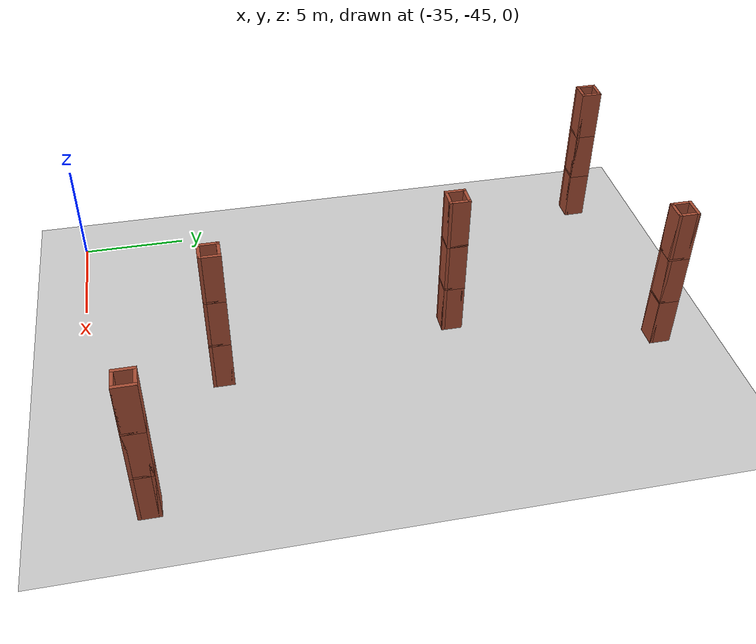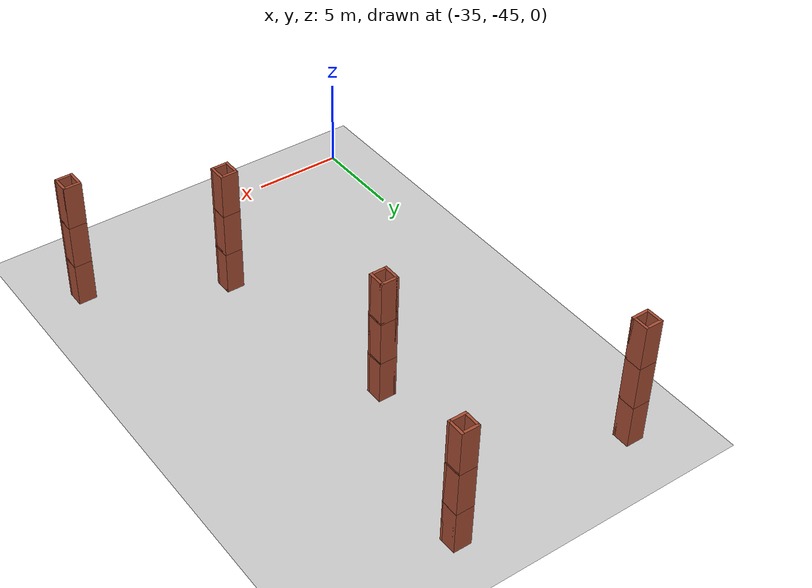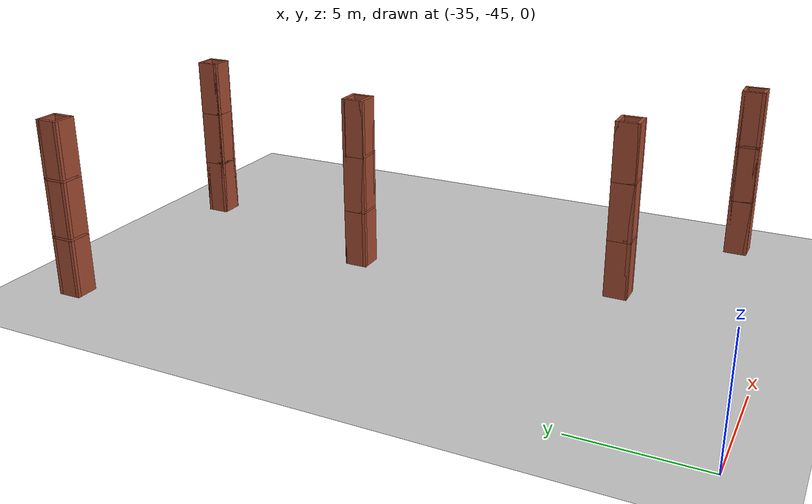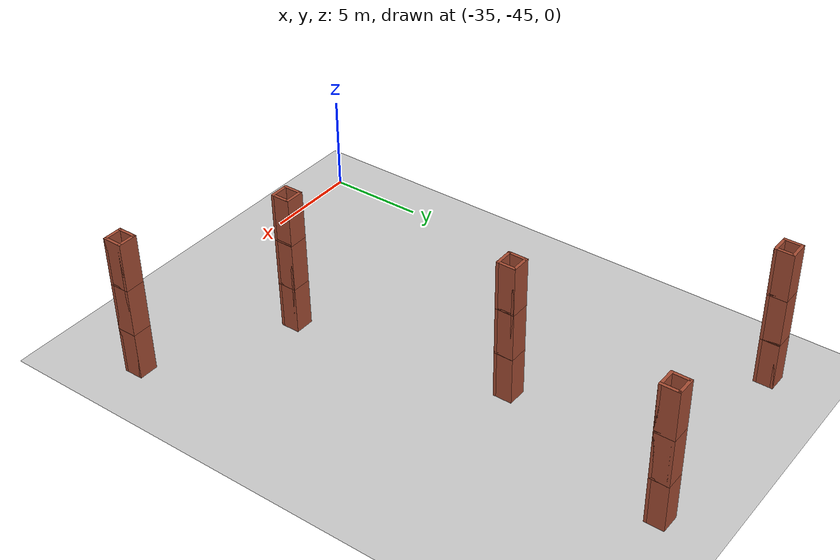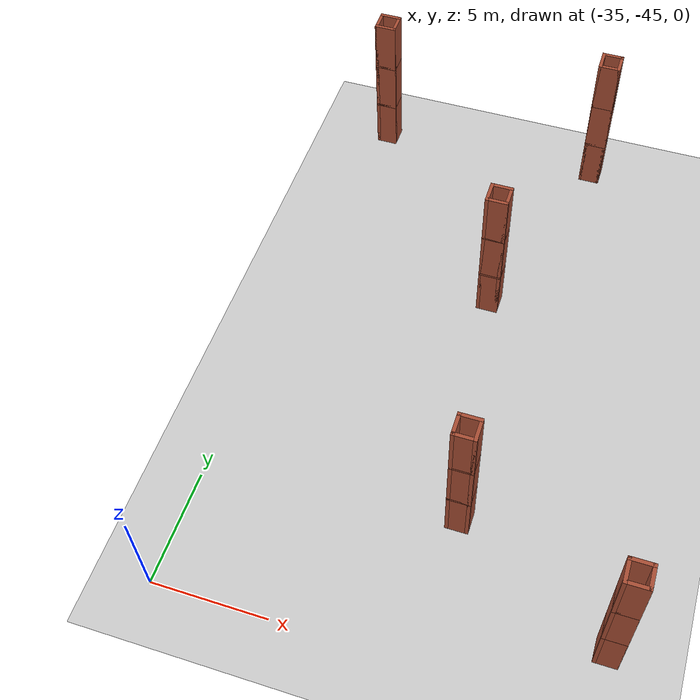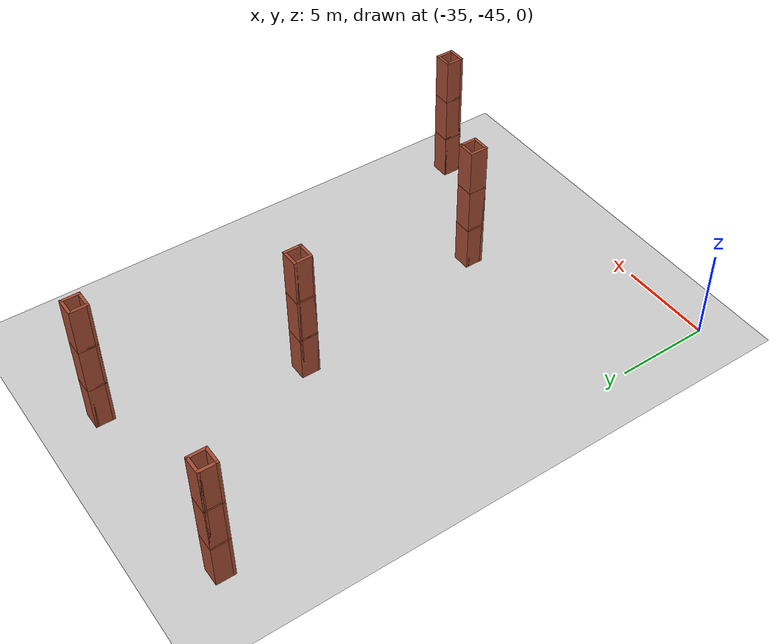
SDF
<sdf version="1.7">
 <world name="default">
  <model name="ground_plane">
   <static>1</static>
   <link name="link">
    <collision name="collision">
     <geometry><plane><normal>0 0 1</normal><size>100 100</size></plane></geometry>
     <surface>
      <contact><collide_bitmask>65535</collide_bitmask></contact>
      <friction><ode><mu>100</mu><mu2>50</mu2></ode></friction>
     </surface>
    </collision>
    <visual name="visual">
     <cast_shadows>0</cast_shadows>
     <geometry><plane><normal>0 0 1</normal><size>100 100</size></plane></geometry>
     <material>
      <script><uri>file://media/materials/scripts/gazebo.material</uri><name>Gazebo/Grey</name></script>
     </material>
    </visual>
   </link>
  </model>
  <model name="wall_model_clone_21">
   <pose>-20.8663 -39.3761 0 0 -0 0</pose>
   <link name="Floor_3">
    <collision name="Floor_3_Collision">
     <geometry><box><size>1 1 0.1</size></box></geometry>
     <pose>0 0 0.05 0 -0 0</pose>
    </collision>
    <visual name="Floor_3_Visual">
     <pose>0 0 0.05 0 -0 0</pose>
     <geometry><box><size>1 1 0.1</size></box></geometry>
     <material>
      <script><uri>file://media/materials/scripts/gazebo.material</uri><name>Gazebo/Bricks</name></script>
      <ambient>1 1 1 1</ambient>
     </material>
     <meta><layer>1</layer></meta>
    </visual>
    <pose>-3.21504 0.623396 2.5 0 -0 0</pose>
   </link>
   <link name="Floor_4">
    <collision name="Floor_4_Collision">
     <geometry><box><size>1 1 0.1</size></box></geometry>
     <pose>0 0 0.05 0 -0 0</pose>
    </collision>
    <visual name="Floor_4_Visual">
     <pose>0 0 0.05 0 -0 0</pose>
     <geometry><box><size>1 1 0.1</size></box></geometry>
     <material>
      <script><uri>file://media/materials/scripts/gazebo.material</uri><name>Gazebo/Bricks</name></script>
      <ambient>1 1 1 1</ambient>
     </material>
     <meta><layer>2</layer></meta>
    </visual>
    <pose>-3.21504 0.623396 5 0 -0 0</pose>
   </link>
   <link name="Wall_19">
    <collision name="Wall_19_Collision">
     <geometry><box><size>1 0.15 2.5</size></box></geometry>
     <pose>0 0 1.25 0 -0 0</pose>
    </collision>
    <visual name="Wall_19_Visual">
     <pose>0 0 1.25 0 -0 0</pose>
     <geometry><box><size>1 0.15 2.5</size></box></geometry>
     <material>
      <script><uri>file://media/materials/scripts/gazebo.material</uri><name>Gazebo/Bricks</name></script>
      <ambient>1 1 1 1</ambient>
     </material>
     <meta><layer>0</layer></meta>
    </visual>
    <pose>-3.64004 0.623396 0 0 -0 1.5708</pose>
   </link>
   <link name="Wall_21">
    <collision name="Wall_21_Collision">
     <geometry><box><size>1 0.15 2.5</size></box></geometry>
     <pose>0 0 1.25 0 -0 0</pose>
    </collision>
    <visual name="Wall_21_Visual">
     <pose>0 0 1.25 0 -0 0</pose>
     <geometry><box><size>1 0.15 2.5</size></box></geometry>
     <material>
      <script><uri>file://media/materials/scripts/gazebo.material</uri><name>Gazebo/Bricks</name></script>
      <ambient>1 1 1 1</ambient>
     </material>
     <meta><layer>0</layer></meta>
    </visual>
    <pose>-3.21504 1.0484 0 0 -0 0</pose>
   </link>
   <link name="Wall_22">
    <collision name="Wall_22_Collision">
     <geometry><box><size>1 0.15 2.5</size></box></geometry>
     <pose>0 0 1.25 0 -0 0</pose>
    </collision>
    <visual name="Wall_22_Visual">
     <pose>0 0 1.25 0 -0 0</pose>
     <geometry><box><size>1 0.15 2.5</size></box></geometry>
     <material>
      <script><uri>file://media/materials/scripts/gazebo.material</uri><name>Gazebo/Bricks</name></script>
      <ambient>1 1 1 1</ambient>
     </material>
     <meta><layer>0</layer></meta>
    </visual>
    <pose>-2.79004 0.623396 0 0 -0 -1.5708</pose>
   </link>
   <link name="Wall_23">
    <collision name="Wall_23_Collision">
     <geometry><box><size>1 0.15 2.5</size></box></geometry>
     <pose>0 0 1.25 0 -0 0</pose>
    </collision>
    <visual name="Wall_23_Visual">
     <pose>0 0 1.25 0 -0 0</pose>
     <geometry><box><size>1 0.15 2.5</size></box></geometry>
     <material>
      <script><uri>file://media/materials/scripts/gazebo.material</uri><name>Gazebo/Bricks</name></script>
      <ambient>1 1 1 1</ambient>
     </material>
     <meta><layer>0</layer></meta>
    </visual>
    <pose>-3.21504 0.198396 0 0 -0 3.14159</pose>
   </link>
   <link name="Wall_25">
    <collision name="Wall_25_Collision">
     <geometry><box><size>1 0.15 2.5</size></box></geometry>
     <pose>0 0 1.25 0 -0 0</pose>
    </collision>
    <visual name="Wall_25_Visual">
     <pose>0 0 1.25 0 -0 0</pose>
     <geometry><box><size>1 0.15 2.5</size></box></geometry>
     <material>
      <script><uri>file://media/materials/scripts/gazebo.material</uri><name>Gazebo/Bricks</name></script>
      <ambient>1 1 1 1</ambient>
     </material>
     <meta><layer>1</layer></meta>
    </visual>
    <pose>-3.64004 0.623396 2.5 0 -0 1.5708</pose>
   </link>
   <link name="Wall_26">
    <collision name="Wall_26_Collision">
     <geometry><box><size>1 0.15 2.5</size></box></geometry>
     <pose>0 0 1.25 0 -0 0</pose>
    </collision>
    <visual name="Wall_26_Visual">
     <pose>0 0 1.25 0 -0 0</pose>
     <geometry><box><size>1 0.15 2.5</size></box></geometry>
     <material>
      <script><uri>file://media/materials/scripts/gazebo.material</uri><name>Gazebo/Bricks</name></script>
      <ambient>1 1 1 1</ambient>
     </material>
     <meta><layer>1</layer></meta>
    </visual>
    <pose>-3.21504 1.0484 2.5 0 -0 0</pose>
   </link>
   <link name="Wall_27">
    <collision name="Wall_27_Collision">
     <geometry><box><size>1 0.15 2.5</size></box></geometry>
     <pose>0 0 1.25 0 -0 0</pose>
    </collision>
    <visual name="Wall_27_Visual">
     <pose>0 0 1.25 0 -0 0</pose>
     <geometry><box><size>1 0.15 2.5</size></box></geometry>
     <material>
      <script><uri>file://media/materials/scripts/gazebo.material</uri><name>Gazebo/Bricks</name></script>
      <ambient>1 1 1 1</ambient>
     </material>
     <meta><layer>1</layer></meta>
    </visual>
    <pose>-2.79004 0.623396 2.5 0 -0 -1.5708</pose>
   </link>
   <link name="Wall_28">
    <collision name="Wall_28_Collision">
     <geometry><box><size>1 0.15 2.5</size></box></geometry>
     <pose>0 0 1.25 0 -0 0</pose>
    </collision>
    <visual name="Wall_28_Visual">
     <pose>0 0 1.25 0 -0 0</pose>
     <geometry><box><size>1 0.15 2.5</size></box></geometry>
     <material>
      <script><uri>file://media/materials/scripts/gazebo.material</uri><name>Gazebo/Bricks</name></script>
      <ambient>1 1 1 1</ambient>
     </material>
     <meta><layer>1</layer></meta>
    </visual>
    <pose>-3.21504 0.198396 2.5 0 -0 3.14159</pose>
   </link>
   <link name="Wall_29">
    <collision name="Wall_29_Collision">
     <geometry><box><size>1 0.15 2.5</size></box></geometry>
     <pose>0 0 1.25 0 -0 0</pose>
    </collision>
    <visual name="Wall_29_Visual">
     <pose>0 0 1.25 0 -0 0</pose>
     <geometry><box><size>1 0.15 2.5</size></box></geometry>
     <material>
      <script><uri>file://media/materials/scripts/gazebo.material</uri><name>Gazebo/Bricks</name></script>
      <ambient>1 1 1 1</ambient>
     </material>
     <meta><layer>2</layer></meta>
    </visual>
    <pose>-3.64004 0.623396 5 0 -0 1.5708</pose>
   </link>
   <link name="Wall_30">
    <collision name="Wall_30_Collision">
     <geometry><box><size>1 0.15 2.5</size></box></geometry>
     <pose>0 0 1.25 0 -0 0</pose>
    </collision>
    <visual name="Wall_30_Visual">
     <pose>0 0 1.25 0 -0 0</pose>
     <geometry><box><size>1 0.15 2.5</size></box></geometry>
     <material>
      <script><uri>file://media/materials/scripts/gazebo.material</uri><name>Gazebo/Bricks</name></script>
      <ambient>1 1 1 1</ambient>
     </material>
     <meta><layer>2</layer></meta>
    </visual>
    <pose>-3.21504 1.0484 5 0 -0 0</pose>
   </link>
   <link name="Wall_31">
    <collision name="Wall_31_Collision">
     <geometry><box><size>1 0.15 2.5</size></box></geometry>
     <pose>0 0 1.25 0 -0 0</pose>
    </collision>
    <visual name="Wall_31_Visual">
     <pose>0 0 1.25 0 -0 0</pose>
     <geometry><box><size>1 0.15 2.5</size></box></geometry>
     <material>
      <script><uri>file://media/materials/scripts/gazebo.material</uri><name>Gazebo/Bricks</name></script>
      <ambient>1 1 1 1</ambient>
     </material>
     <meta><layer>2</layer></meta>
    </visual>
    <pose>-2.79004 0.623396 5 0 -0 -1.5708</pose>
   </link>
   <link name="Wall_32">
    <collision name="Wall_32_Collision">
     <geometry><box><size>1 0.15 2.5</size></box></geometry>
     <pose>0 0 1.25 0 -0 0</pose>
    </collision>
    <visual name="Wall_32_Visual">
     <pose>0 0 1.25 0 -0 0</pose>
     <geometry><box><size>1 0.15 2.5</size></box></geometry>
     <material>
      <script><uri>file://media/materials/scripts/gazebo.material</uri><name>Gazebo/Bricks</name></script>
      <ambient>1 1 1 1</ambient>
     </material>
     <meta><layer>2</layer></meta>
    </visual>
    <pose>-3.21504 0.198396 5 0 -0 3.14159</pose>
   </link>
   <static>1</static>
  </model>
  <model name="wall_model_clone_22">
   <pose>-14 -43 0 0 -0 0</pose>
   <link name="Floor_3">
    <collision name="Floor_3_Collision">
     <geometry><box><size>1 1 0.1</size></box></geometry>
     <pose>0 0 0.05 0 -0 0</pose>
    </collision>
    <visual name="Floor_3_Visual">
     <pose>0 0 0.05 0 -0 0</pose>
     <geometry><box><size>1 1 0.1</size></box></geometry>
     <material>
      <script><uri>file://media/materials/scripts/gazebo.material</uri><name>Gazebo/Bricks</name></script>
      <ambient>1 1 1 1</ambient>
     </material>
     <meta><layer>1</layer></meta>
    </visual>
    <pose>-3.21504 0.623396 2.5 0 -0 0</pose>
   </link>
   <link name="Floor_4">
    <collision name="Floor_4_Collision">
     <geometry><box><size>1 1 0.1</size></box></geometry>
     <pose>0 0 0.05 0 -0 0</pose>
    </collision>
    <visual name="Floor_4_Visual">
     <pose>0 0 0.05 0 -0 0</pose>
     <geometry><box><size>1 1 0.1</size></box></geometry>
     <material>
      <script><uri>file://media/materials/scripts/gazebo.material</uri><name>Gazebo/Bricks</name></script>
      <ambient>1 1 1 1</ambient>
     </material>
     <meta><layer>2</layer></meta>
    </visual>
    <pose>-3.21504 0.623396 5 0 -0 0</pose>
   </link>
   <link name="Wall_19">
    <collision name="Wall_19_Collision">
     <geometry><box><size>1 0.15 2.5</size></box></geometry>
     <pose>0 0 1.25 0 -0 0</pose>
    </collision>
    <visual name="Wall_19_Visual">
     <pose>0 0 1.25 0 -0 0</pose>
     <geometry><box><size>1 0.15 2.5</size></box></geometry>
     <material>
      <script><uri>file://media/materials/scripts/gazebo.material</uri><name>Gazebo/Bricks</name></script>
      <ambient>1 1 1 1</ambient>
     </material>
     <meta><layer>0</layer></meta>
    </visual>
    <pose>-3.64004 0.623396 0 0 -0 1.5708</pose>
   </link>
   <link name="Wall_21">
    <collision name="Wall_21_Collision">
     <geometry><box><size>1 0.15 2.5</size></box></geometry>
     <pose>0 0 1.25 0 -0 0</pose>
    </collision>
    <visual name="Wall_21_Visual">
     <pose>0 0 1.25 0 -0 0</pose>
     <geometry><box><size>1 0.15 2.5</size></box></geometry>
     <material>
      <script><uri>file://media/materials/scripts/gazebo.material</uri><name>Gazebo/Bricks</name></script>
      <ambient>1 1 1 1</ambient>
     </material>
     <meta><layer>0</layer></meta>
    </visual>
    <pose>-3.21504 1.0484 0 0 -0 0</pose>
   </link>
   <link name="Wall_22">
    <collision name="Wall_22_Collision">
     <geometry><box><size>1 0.15 2.5</size></box></geometry>
     <pose>0 0 1.25 0 -0 0</pose>
    </collision>
    <visual name="Wall_22_Visual">
     <pose>0 0 1.25 0 -0 0</pose>
     <geometry><box><size>1 0.15 2.5</size></box></geometry>
     <material>
      <script><uri>file://media/materials/scripts/gazebo.material</uri><name>Gazebo/Bricks</name></script>
      <ambient>1 1 1 1</ambient>
     </material>
     <meta><layer>0</layer></meta>
    </visual>
    <pose>-2.79004 0.623396 0 0 -0 -1.5708</pose>
   </link>
   <link name="Wall_23">
    <collision name="Wall_23_Collision">
     <geometry><box><size>1 0.15 2.5</size></box></geometry>
     <pose>0 0 1.25 0 -0 0</pose>
    </collision>
    <visual name="Wall_23_Visual">
     <pose>0 0 1.25 0 -0 0</pose>
     <geometry><box><size>1 0.15 2.5</size></box></geometry>
     <material>
      <script><uri>file://media/materials/scripts/gazebo.material</uri><name>Gazebo/Bricks</name></script>
      <ambient>1 1 1 1</ambient>
     </material>
     <meta><layer>0</layer></meta>
    </visual>
    <pose>-3.21504 0.198396 0 0 -0 3.14159</pose>
   </link>
   <link name="Wall_25">
    <collision name="Wall_25_Collision">
     <geometry><box><size>1 0.15 2.5</size></box></geometry>
     <pose>0 0 1.25 0 -0 0</pose>
    </collision>
    <visual name="Wall_25_Visual">
     <pose>0 0 1.25 0 -0 0</pose>
     <geometry><box><size>1 0.15 2.5</size></box></geometry>
     <material>
      <script><uri>file://media/materials/scripts/gazebo.material</uri><name>Gazebo/Bricks</name></script>
      <ambient>1 1 1 1</ambient>
     </material>
     <meta><layer>1</layer></meta>
    </visual>
    <pose>-3.64004 0.623396 2.5 0 -0 1.5708</pose>
   </link>
   <link name="Wall_26">
    <collision name="Wall_26_Collision">
     <geometry><box><size>1 0.15 2.5</size></box></geometry>
     <pose>0 0 1.25 0 -0 0</pose>
    </collision>
    <visual name="Wall_26_Visual">
     <pose>0 0 1.25 0 -0 0</pose>
     <geometry><box><size>1 0.15 2.5</size></box></geometry>
     <material>
      <script><uri>file://media/materials/scripts/gazebo.material</uri><name>Gazebo/Bricks</name></script>
      <ambient>1 1 1 1</ambient>
     </material>
     <meta><layer>1</layer></meta>
    </visual>
    <pose>-3.21504 1.0484 2.5 0 -0 0</pose>
   </link>
   <link name="Wall_27">
    <collision name="Wall_27_Collision">
     <geometry><box><size>1 0.15 2.5</size></box></geometry>
     <pose>0 0 1.25 0 -0 0</pose>
    </collision>
    <visual name="Wall_27_Visual">
     <pose>0 0 1.25 0 -0 0</pose>
     <geometry><box><size>1 0.15 2.5</size></box></geometry>
     <material>
      <script><uri>file://media/materials/scripts/gazebo.material</uri><name>Gazebo/Bricks</name></script>
      <ambient>1 1 1 1</ambient>
     </material>
     <meta><layer>1</layer></meta>
    </visual>
    <pose>-2.79004 0.623396 2.5 0 -0 -1.5708</pose>
   </link>
   <link name="Wall_28">
    <collision name="Wall_28_Collision">
     <geometry><box><size>1 0.15 2.5</size></box></geometry>
     <pose>0 0 1.25 0 -0 0</pose>
    </collision>
    <visual name="Wall_28_Visual">
     <pose>0 0 1.25 0 -0 0</pose>
     <geometry><box><size>1 0.15 2.5</size></box></geometry>
     <material>
      <script><uri>file://media/materials/scripts/gazebo.material</uri><name>Gazebo/Bricks</name></script>
      <ambient>1 1 1 1</ambient>
     </material>
     <meta><layer>1</layer></meta>
    </visual>
    <pose>-3.21504 0.198396 2.5 0 -0 3.14159</pose>
   </link>
   <link name="Wall_29">
    <collision name="Wall_29_Collision">
     <geometry><box><size>1 0.15 2.5</size></box></geometry>
     <pose>0 0 1.25 0 -0 0</pose>
    </collision>
    <visual name="Wall_29_Visual">
     <pose>0 0 1.25 0 -0 0</pose>
     <geometry><box><size>1 0.15 2.5</size></box></geometry>
     <material>
      <script><uri>file://media/materials/scripts/gazebo.material</uri><name>Gazebo/Bricks</name></script>
      <ambient>1 1 1 1</ambient>
     </material>
     <meta><layer>2</layer></meta>
    </visual>
    <pose>-3.64004 0.623396 5 0 -0 1.5708</pose>
   </link>
   <link name="Wall_30">
    <collision name="Wall_30_Collision">
     <geometry><box><size>1 0.15 2.5</size></box></geometry>
     <pose>0 0 1.25 0 -0 0</pose>
    </collision>
    <visual name="Wall_30_Visual">
     <pose>0 0 1.25 0 -0 0</pose>
     <geometry><box><size>1 0.15 2.5</size></box></geometry>
     <material>
      <script><uri>file://media/materials/scripts/gazebo.material</uri><name>Gazebo/Bricks</name></script>
      <ambient>1 1 1 1</ambient>
     </material>
     <meta><layer>2</layer></meta>
    </visual>
    <pose>-3.21504 1.0484 5 0 -0 0</pose>
   </link>
   <link name="Wall_31">
    <collision name="Wall_31_Collision">
     <geometry><box><size>1 0.15 2.5</size></box></geometry>
     <pose>0 0 1.25 0 -0 0</pose>
    </collision>
    <visual name="Wall_31_Visual">
     <pose>0 0 1.25 0 -0 0</pose>
     <geometry><box><size>1 0.15 2.5</size></box></geometry>
     <material>
      <script><uri>file://media/materials/scripts/gazebo.material</uri><name>Gazebo/Bricks</name></script>
      <ambient>1 1 1 1</ambient>
     </material>
     <meta><layer>2</layer></meta>
    </visual>
    <pose>-2.79004 0.623396 5 0 -0 -1.5708</pose>
   </link>
   <link name="Wall_32">
    <collision name="Wall_32_Collision">
     <geometry><box><size>1 0.15 2.5</size></box></geometry>
     <pose>0 0 1.25 0 -0 0</pose>
    </collision>
    <visual name="Wall_32_Visual">
     <pose>0 0 1.25 0 -0 0</pose>
     <geometry><box><size>1 0.15 2.5</size></box></geometry>
     <material>
      <script><uri>file://media/materials/scripts/gazebo.material</uri><name>Gazebo/Bricks</name></script>
      <ambient>1 1 1 1</ambient>
     </material>
     <meta><layer>2</layer></meta>
    </visual>
    <pose>-3.21504 0.198396 5 0 -0 3.14159</pose>
   </link>
   <static>1</static>
  </model>
  <model name="wall_model_clone_23">
   <pose>-22.6002 -28.1765 0 0 -0 0</pose>
   <link name="Floor_3">
    <collision name="Floor_3_Collision">
     <geometry><box><size>1 1 0.1</size></box></geometry>
     <pose>0 0 0.05 0 -0 0</pose>
    </collision>
    <visual name="Floor_3_Visual">
     <pose>0 0 0.05 0 -0 0</pose>
     <geometry><box><size>1 1 0.1</size></box></geometry>
     <material>
      <script><uri>file://media/materials/scripts/gazebo.material</uri><name>Gazebo/Bricks</name></script>
      <ambient>1 1 1 1</ambient>
     </material>
     <meta><layer>1</layer></meta>
    </visual>
    <pose>-3.21504 0.623396 2.5 0 -0 0</pose>
   </link>
   <link name="Floor_4">
    <collision name="Floor_4_Collision">
     <geometry><box><size>1 1 0.1</size></box></geometry>
     <pose>0 0 0.05 0 -0 0</pose>
    </collision>
    <visual name="Floor_4_Visual">
     <pose>0 0 0.05 0 -0 0</pose>
     <geometry><box><size>1 1 0.1</size></box></geometry>
     <material>
      <script><uri>file://media/materials/scripts/gazebo.material</uri><name>Gazebo/Bricks</name></script>
      <ambient>1 1 1 1</ambient>
     </material>
     <meta><layer>2</layer></meta>
    </visual>
    <pose>-3.21504 0.623396 5 0 -0 0</pose>
   </link>
   <link name="Wall_19">
    <collision name="Wall_19_Collision">
     <geometry><box><size>1 0.15 2.5</size></box></geometry>
     <pose>0 0 1.25 0 -0 0</pose>
    </collision>
    <visual name="Wall_19_Visual">
     <pose>0 0 1.25 0 -0 0</pose>
     <geometry><box><size>1 0.15 2.5</size></box></geometry>
     <material>
      <script><uri>file://media/materials/scripts/gazebo.material</uri><name>Gazebo/Bricks</name></script>
      <ambient>1 1 1 1</ambient>
     </material>
     <meta><layer>0</layer></meta>
    </visual>
    <pose>-3.64004 0.623396 0 0 -0 1.5708</pose>
   </link>
   <link name="Wall_21">
    <collision name="Wall_21_Collision">
     <geometry><box><size>1 0.15 2.5</size></box></geometry>
     <pose>0 0 1.25 0 -0 0</pose>
    </collision>
    <visual name="Wall_21_Visual">
     <pose>0 0 1.25 0 -0 0</pose>
     <geometry><box><size>1 0.15 2.5</size></box></geometry>
     <material>
      <script><uri>file://media/materials/scripts/gazebo.material</uri><name>Gazebo/Bricks</name></script>
      <ambient>1 1 1 1</ambient>
     </material>
     <meta><layer>0</layer></meta>
    </visual>
    <pose>-3.21504 1.0484 0 0 -0 0</pose>
   </link>
   <link name="Wall_22">
    <collision name="Wall_22_Collision">
     <geometry><box><size>1 0.15 2.5</size></box></geometry>
     <pose>0 0 1.25 0 -0 0</pose>
    </collision>
    <visual name="Wall_22_Visual">
     <pose>0 0 1.25 0 -0 0</pose>
     <geometry><box><size>1 0.15 2.5</size></box></geometry>
     <material>
      <script><uri>file://media/materials/scripts/gazebo.material</uri><name>Gazebo/Bricks</name></script>
      <ambient>1 1 1 1</ambient>
     </material>
     <meta><layer>0</layer></meta>
    </visual>
    <pose>-2.79004 0.623396 0 0 -0 -1.5708</pose>
   </link>
   <link name="Wall_23">
    <collision name="Wall_23_Collision">
     <geometry><box><size>1 0.15 2.5</size></box></geometry>
     <pose>0 0 1.25 0 -0 0</pose>
    </collision>
    <visual name="Wall_23_Visual">
     <pose>0 0 1.25 0 -0 0</pose>
     <geometry><box><size>1 0.15 2.5</size></box></geometry>
     <material>
      <script><uri>file://media/materials/scripts/gazebo.material</uri><name>Gazebo/Bricks</name></script>
      <ambient>1 1 1 1</ambient>
     </material>
     <meta><layer>0</layer></meta>
    </visual>
    <pose>-3.21504 0.198396 0 0 -0 3.14159</pose>
   </link>
   <link name="Wall_25">
    <collision name="Wall_25_Collision">
     <geometry><box><size>1 0.15 2.5</size></box></geometry>
     <pose>0 0 1.25 0 -0 0</pose>
    </collision>
    <visual name="Wall_25_Visual">
     <pose>0 0 1.25 0 -0 0</pose>
     <geometry><box><size>1 0.15 2.5</size></box></geometry>
     <material>
      <script><uri>file://media/materials/scripts/gazebo.material</uri><name>Gazebo/Bricks</name></script>
      <ambient>1 1 1 1</ambient>
     </material>
     <meta><layer>1</layer></meta>
    </visual>
    <pose>-3.64004 0.623396 2.5 0 -0 1.5708</pose>
   </link>
   <link name="Wall_26">
    <collision name="Wall_26_Collision">
     <geometry><box><size>1 0.15 2.5</size></box></geometry>
     <pose>0 0 1.25 0 -0 0</pose>
    </collision>
    <visual name="Wall_26_Visual">
     <pose>0 0 1.25 0 -0 0</pose>
     <geometry><box><size>1 0.15 2.5</size></box></geometry>
     <material>
      <script><uri>file://media/materials/scripts/gazebo.material</uri><name>Gazebo/Bricks</name></script>
      <ambient>1 1 1 1</ambient>
     </material>
     <meta><layer>1</layer></meta>
    </visual>
    <pose>-3.21504 1.0484 2.5 0 -0 0</pose>
   </link>
   <link name="Wall_27">
    <collision name="Wall_27_Collision">
     <geometry><box><size>1 0.15 2.5</size></box></geometry>
     <pose>0 0 1.25 0 -0 0</pose>
    </collision>
    <visual name="Wall_27_Visual">
     <pose>0 0 1.25 0 -0 0</pose>
     <geometry><box><size>1 0.15 2.5</size></box></geometry>
     <material>
      <script><uri>file://media/materials/scripts/gazebo.material</uri><name>Gazebo/Bricks</name></script>
      <ambient>1 1 1 1</ambient>
     </material>
     <meta><layer>1</layer></meta>
    </visual>
    <pose>-2.79004 0.623396 2.5 0 -0 -1.5708</pose>
   </link>
   <link name="Wall_28">
    <collision name="Wall_28_Collision">
     <geometry><box><size>1 0.15 2.5</size></box></geometry>
     <pose>0 0 1.25 0 -0 0</pose>
    </collision>
    <visual name="Wall_28_Visual">
     <pose>0 0 1.25 0 -0 0</pose>
     <geometry><box><size>1 0.15 2.5</size></box></geometry>
     <material>
      <script><uri>file://media/materials/scripts/gazebo.material</uri><name>Gazebo/Bricks</name></script>
      <ambient>1 1 1 1</ambient>
     </material>
     <meta><layer>1</layer></meta>
    </visual>
    <pose>-3.21504 0.198396 2.5 0 -0 3.14159</pose>
   </link>
   <link name="Wall_29">
    <collision name="Wall_29_Collision">
     <geometry><box><size>1 0.15 2.5</size></box></geometry>
     <pose>0 0 1.25 0 -0 0</pose>
    </collision>
    <visual name="Wall_29_Visual">
     <pose>0 0 1.25 0 -0 0</pose>
     <geometry><box><size>1 0.15 2.5</size></box></geometry>
     <material>
      <script><uri>file://media/materials/scripts/gazebo.material</uri><name>Gazebo/Bricks</name></script>
      <ambient>1 1 1 1</ambient>
     </material>
     <meta><layer>2</layer></meta>
    </visual>
    <pose>-3.64004 0.623396 5 0 -0 1.5708</pose>
   </link>
   <link name="Wall_30">
    <collision name="Wall_30_Collision">
     <geometry><box><size>1 0.15 2.5</size></box></geometry>
     <pose>0 0 1.25 0 -0 0</pose>
    </collision>
    <visual name="Wall_30_Visual">
     <pose>0 0 1.25 0 -0 0</pose>
     <geometry><box><size>1 0.15 2.5</size></box></geometry>
     <material>
      <script><uri>file://media/materials/scripts/gazebo.material</uri><name>Gazebo/Bricks</name></script>
      <ambient>1 1 1 1</ambient>
     </material>
     <meta><layer>2</layer></meta>
    </visual>
    <pose>-3.21504 1.0484 5 0 -0 0</pose>
   </link>
   <link name="Wall_31">
    <collision name="Wall_31_Collision">
     <geometry><box><size>1 0.15 2.5</size></box></geometry>
     <pose>0 0 1.25 0 -0 0</pose>
    </collision>
    <visual name="Wall_31_Visual">
     <pose>0 0 1.25 0 -0 0</pose>
     <geometry><box><size>1 0.15 2.5</size></box></geometry>
     <material>
      <script><uri>file://media/materials/scripts/gazebo.material</uri><name>Gazebo/Bricks</name></script>
      <ambient>1 1 1 1</ambient>
     </material>
     <meta><layer>2</layer></meta>
    </visual>
    <pose>-2.79004 0.623396 5 0 -0 -1.5708</pose>
   </link>
   <link name="Wall_32">
    <collision name="Wall_32_Collision">
     <geometry><box><size>1 0.15 2.5</size></box></geometry>
     <pose>0 0 1.25 0 -0 0</pose>
    </collision>
    <visual name="Wall_32_Visual">
     <pose>0 0 1.25 0 -0 0</pose>
     <geometry><box><size>1 0.15 2.5</size></box></geometry>
     <material>
      <script><uri>file://media/materials/scripts/gazebo.material</uri><name>Gazebo/Bricks</name></script>
      <ambient>1 1 1 1</ambient>
     </material>
     <meta><layer>2</layer></meta>
    </visual>
    <pose>-3.21504 0.198396 5 0 -0 3.14159</pose>
   </link>
   <static>1</static>
  </model>
  <model name="wall_model_clone_24">
   <pose>-19.746 -18.6454 0 0 -0 0</pose>
   <link name="Floor_3">
    <collision name="Floor_3_Collision">
     <geometry><box><size>1 1 0.1</size></box></geometry>
     <pose>0 0 0.05 0 -0 0</pose>
    </collision>
    <visual name="Floor_3_Visual">
     <pose>0 0 0.05 0 -0 0</pose>
     <geometry><box><size>1 1 0.1</size></box></geometry>
     <material>
      <script><uri>file://media/materials/scripts/gazebo.material</uri><name>Gazebo/Bricks</name></script>
      <ambient>1 1 1 1</ambient>
     </material>
     <meta><layer>1</layer></meta>
    </visual>
    <pose>-3.21504 0.623396 2.5 0 -0 0</pose>
   </link>
   <link name="Floor_4">
    <collision name="Floor_4_Collision">
     <geometry><box><size>1 1 0.1</size></box></geometry>
     <pose>0 0 0.05 0 -0 0</pose>
    </collision>
    <visual name="Floor_4_Visual">
     <pose>0 0 0.05 0 -0 0</pose>
     <geometry><box><size>1 1 0.1</size></box></geometry>
     <material>
      <script><uri>file://media/materials/scripts/gazebo.material</uri><name>Gazebo/Bricks</name></script>
      <ambient>1 1 1 1</ambient>
     </material>
     <meta><layer>2</layer></meta>
    </visual>
    <pose>-3.21504 0.623396 5 0 -0 0</pose>
   </link>
   <link name="Wall_19">
    <collision name="Wall_19_Collision">
     <geometry><box><size>1 0.15 2.5</size></box></geometry>
     <pose>0 0 1.25 0 -0 0</pose>
    </collision>
    <visual name="Wall_19_Visual">
     <pose>0 0 1.25 0 -0 0</pose>
     <geometry><box><size>1 0.15 2.5</size></box></geometry>
     <material>
      <script><uri>file://media/materials/scripts/gazebo.material</uri><name>Gazebo/Bricks</name></script>
      <ambient>1 1 1 1</ambient>
     </material>
     <meta><layer>0</layer></meta>
    </visual>
    <pose>-3.64004 0.623396 0 0 -0 1.5708</pose>
   </link>
   <link name="Wall_21">
    <collision name="Wall_21_Collision">
     <geometry><box><size>1 0.15 2.5</size></box></geometry>
     <pose>0 0 1.25 0 -0 0</pose>
    </collision>
    <visual name="Wall_21_Visual">
     <pose>0 0 1.25 0 -0 0</pose>
     <geometry><box><size>1 0.15 2.5</size></box></geometry>
     <material>
      <script><uri>file://media/materials/scripts/gazebo.material</uri><name>Gazebo/Bricks</name></script>
      <ambient>1 1 1 1</ambient>
     </material>
     <meta><layer>0</layer></meta>
    </visual>
    <pose>-3.21504 1.0484 0 0 -0 0</pose>
   </link>
   <link name="Wall_22">
    <collision name="Wall_22_Collision">
     <geometry><box><size>1 0.15 2.5</size></box></geometry>
     <pose>0 0 1.25 0 -0 0</pose>
    </collision>
    <visual name="Wall_22_Visual">
     <pose>0 0 1.25 0 -0 0</pose>
     <geometry><box><size>1 0.15 2.5</size></box></geometry>
     <material>
      <script><uri>file://media/materials/scripts/gazebo.material</uri><name>Gazebo/Bricks</name></script>
      <ambient>1 1 1 1</ambient>
     </material>
     <meta><layer>0</layer></meta>
    </visual>
    <pose>-2.79004 0.623396 0 0 -0 -1.5708</pose>
   </link>
   <link name="Wall_23">
    <collision name="Wall_23_Collision">
     <geometry><box><size>1 0.15 2.5</size></box></geometry>
     <pose>0 0 1.25 0 -0 0</pose>
    </collision>
    <visual name="Wall_23_Visual">
     <pose>0 0 1.25 0 -0 0</pose>
     <geometry><box><size>1 0.15 2.5</size></box></geometry>
     <material>
      <script><uri>file://media/materials/scripts/gazebo.material</uri><name>Gazebo/Bricks</name></script>
      <ambient>1 1 1 1</ambient>
     </material>
     <meta><layer>0</layer></meta>
    </visual>
    <pose>-3.21504 0.198396 0 0 -0 3.14159</pose>
   </link>
   <link name="Wall_25">
    <collision name="Wall_25_Collision">
     <geometry><box><size>1 0.15 2.5</size></box></geometry>
     <pose>0 0 1.25 0 -0 0</pose>
    </collision>
    <visual name="Wall_25_Visual">
     <pose>0 0 1.25 0 -0 0</pose>
     <geometry><box><size>1 0.15 2.5</size></box></geometry>
     <material>
      <script><uri>file://media/materials/scripts/gazebo.material</uri><name>Gazebo/Bricks</name></script>
      <ambient>1 1 1 1</ambient>
     </material>
     <meta><layer>1</layer></meta>
    </visual>
    <pose>-3.64004 0.623396 2.5 0 -0 1.5708</pose>
   </link>
   <link name="Wall_26">
    <collision name="Wall_26_Collision">
     <geometry><box><size>1 0.15 2.5</size></box></geometry>
     <pose>0 0 1.25 0 -0 0</pose>
    </collision>
    <visual name="Wall_26_Visual">
     <pose>0 0 1.25 0 -0 0</pose>
     <geometry><box><size>1 0.15 2.5</size></box></geometry>
     <material>
      <script><uri>file://media/materials/scripts/gazebo.material</uri><name>Gazebo/Bricks</name></script>
      <ambient>1 1 1 1</ambient>
     </material>
     <meta><layer>1</layer></meta>
    </visual>
    <pose>-3.21504 1.0484 2.5 0 -0 0</pose>
   </link>
   <link name="Wall_27">
    <collision name="Wall_27_Collision">
     <geometry><box><size>1 0.15 2.5</size></box></geometry>
     <pose>0 0 1.25 0 -0 0</pose>
    </collision>
    <visual name="Wall_27_Visual">
     <pose>0 0 1.25 0 -0 0</pose>
     <geometry><box><size>1 0.15 2.5</size></box></geometry>
     <material>
      <script><uri>file://media/materials/scripts/gazebo.material</uri><name>Gazebo/Bricks</name></script>
      <ambient>1 1 1 1</ambient>
     </material>
     <meta><layer>1</layer></meta>
    </visual>
    <pose>-2.79004 0.623396 2.5 0 -0 -1.5708</pose>
   </link>
   <link name="Wall_28">
    <collision name="Wall_28_Collision">
     <geometry><box><size>1 0.15 2.5</size></box></geometry>
     <pose>0 0 1.25 0 -0 0</pose>
    </collision>
    <visual name="Wall_28_Visual">
     <pose>0 0 1.25 0 -0 0</pose>
     <geometry><box><size>1 0.15 2.5</size></box></geometry>
     <material>
      <script><uri>file://media/materials/scripts/gazebo.material</uri><name>Gazebo/Bricks</name></script>
      <ambient>1 1 1 1</ambient>
     </material>
     <meta><layer>1</layer></meta>
    </visual>
    <pose>-3.21504 0.198396 2.5 0 -0 3.14159</pose>
   </link>
   <link name="Wall_29">
    <collision name="Wall_29_Collision">
     <geometry><box><size>1 0.15 2.5</size></box></geometry>
     <pose>0 0 1.25 0 -0 0</pose>
    </collision>
    <visual name="Wall_29_Visual">
     <pose>0 0 1.25 0 -0 0</pose>
     <geometry><box><size>1 0.15 2.5</size></box></geometry>
     <material>
      <script><uri>file://media/materials/scripts/gazebo.material</uri><name>Gazebo/Bricks</name></script>
      <ambient>1 1 1 1</ambient>
     </material>
     <meta><layer>2</layer></meta>
    </visual>
    <pose>-3.64004 0.623396 5 0 -0 1.5708</pose>
   </link>
   <link name="Wall_30">
    <collision name="Wall_30_Collision">
     <geometry><box><size>1 0.15 2.5</size></box></geometry>
     <pose>0 0 1.25 0 -0 0</pose>
    </collision>
    <visual name="Wall_30_Visual">
     <pose>0 0 1.25 0 -0 0</pose>
     <geometry><box><size>1 0.15 2.5</size></box></geometry>
     <material>
      <script><uri>file://media/materials/scripts/gazebo.material</uri><name>Gazebo/Bricks</name></script>
      <ambient>1 1 1 1</ambient>
     </material>
     <meta><layer>2</layer></meta>
    </visual>
    <pose>-3.21504 1.0484 5 0 -0 0</pose>
   </link>
   <link name="Wall_31">
    <collision name="Wall_31_Collision">
     <geometry><box><size>1 0.15 2.5</size></box></geometry>
     <pose>0 0 1.25 0 -0 0</pose>
    </collision>
    <visual name="Wall_31_Visual">
     <pose>0 0 1.25 0 -0 0</pose>
     <geometry><box><size>1 0.15 2.5</size></box></geometry>
     <material>
      <script><uri>file://media/materials/scripts/gazebo.material</uri><name>Gazebo/Bricks</name></script>
      <ambient>1 1 1 1</ambient>
     </material>
     <meta><layer>2</layer></meta>
    </visual>
    <pose>-2.79004 0.623396 5 0 -0 -1.5708</pose>
   </link>
   <link name="Wall_32">
    <collision name="Wall_32_Collision">
     <geometry><box><size>1 0.15 2.5</size></box></geometry>
     <pose>0 0 1.25 0 -0 0</pose>
    </collision>
    <visual name="Wall_32_Visual">
     <pose>0 0 1.25 0 -0 0</pose>
     <geometry><box><size>1 0.15 2.5</size></box></geometry>
     <material>
      <script><uri>file://media/materials/scripts/gazebo.material</uri><name>Gazebo/Bricks</name></script>
      <ambient>1 1 1 1</ambient>
     </material>
     <meta><layer>2</layer></meta>
    </visual>
    <pose>-3.21504 0.198396 5 0 -0 3.14159</pose>
   </link>
   <static>1</static>
  </model>
  <model name="wall_model_clone_28">
   <pose>-30.4638 -19.035 0 0 -0 0</pose>
   <link name="Floor_3">
    <collision name="Floor_3_Collision">
     <geometry><box><size>1 1 0.1</size></box></geometry>
     <pose>0 0 0.05 0 -0 0</pose>
    </collision>
    <visual name="Floor_3_Visual">
     <pose>0 0 0.05 0 -0 0</pose>
     <geometry><box><size>1 1 0.1</size></box></geometry>
     <material>
      <script><uri>file://media/materials/scripts/gazebo.material</uri><name>Gazebo/Bricks</name></script>
      <ambient>1 1 1 1</ambient>
     </material>
     <meta><layer>1</layer></meta>
    </visual>
    <pose>-3.21504 0.623396 2.5 0 -0 0</pose>
   </link>
   <link name="Floor_4">
    <collision name="Floor_4_Collision">
     <geometry><box><size>1 1 0.1</size></box></geometry>
     <pose>0 0 0.05 0 -0 0</pose>
    </collision>
    <visual name="Floor_4_Visual">
     <pose>0 0 0.05 0 -0 0</pose>
     <geometry><box><size>1 1 0.1</size></box></geometry>
     <material>
      <script><uri>file://media/materials/scripts/gazebo.material</uri><name>Gazebo/Bricks</name></script>
      <ambient>1 1 1 1</ambient>
     </material>
     <meta><layer>2</layer></meta>
    </visual>
    <pose>-3.21504 0.623396 5 0 -0 0</pose>
   </link>
   <link name="Wall_19">
    <collision name="Wall_19_Collision">
     <geometry><box><size>1 0.15 2.5</size></box></geometry>
     <pose>0 0 1.25 0 -0 0</pose>
    </collision>
    <visual name="Wall_19_Visual">
     <pose>0 0 1.25 0 -0 0</pose>
     <geometry><box><size>1 0.15 2.5</size></box></geometry>
     <material>
      <script><uri>file://media/materials/scripts/gazebo.material</uri><name>Gazebo/Bricks</name></script>
      <ambient>1 1 1 1</ambient>
     </material>
     <meta><layer>0</layer></meta>
    </visual>
    <pose>-3.64004 0.623396 0 0 -0 1.5708</pose>
   </link>
   <link name="Wall_21">
    <collision name="Wall_21_Collision">
     <geometry><box><size>1 0.15 2.5</size></box></geometry>
     <pose>0 0 1.25 0 -0 0</pose>
    </collision>
    <visual name="Wall_21_Visual">
     <pose>0 0 1.25 0 -0 0</pose>
     <geometry><box><size>1 0.15 2.5</size></box></geometry>
     <material>
      <script><uri>file://media/materials/scripts/gazebo.material</uri><name>Gazebo/Bricks</name></script>
      <ambient>1 1 1 1</ambient>
     </material>
     <meta><layer>0</layer></meta>
    </visual>
    <pose>-3.21504 1.0484 0 0 -0 0</pose>
   </link>
   <link name="Wall_22">
    <collision name="Wall_22_Collision">
     <geometry><box><size>1 0.15 2.5</size></box></geometry>
     <pose>0 0 1.25 0 -0 0</pose>
    </collision>
    <visual name="Wall_22_Visual">
     <pose>0 0 1.25 0 -0 0</pose>
     <geometry><box><size>1 0.15 2.5</size></box></geometry>
     <material>
      <script><uri>file://media/materials/scripts/gazebo.material</uri><name>Gazebo/Bricks</name></script>
      <ambient>1 1 1 1</ambient>
     </material>
     <meta><layer>0</layer></meta>
    </visual>
    <pose>-2.79004 0.623396 0 0 -0 -1.5708</pose>
   </link>
   <link name="Wall_23">
    <collision name="Wall_23_Collision">
     <geometry><box><size>1 0.15 2.5</size></box></geometry>
     <pose>0 0 1.25 0 -0 0</pose>
    </collision>
    <visual name="Wall_23_Visual">
     <pose>0 0 1.25 0 -0 0</pose>
     <geometry><box><size>1 0.15 2.5</size></box></geometry>
     <material>
      <script><uri>file://media/materials/scripts/gazebo.material</uri><name>Gazebo/Bricks</name></script>
      <ambient>1 1 1 1</ambient>
     </material>
     <meta><layer>0</layer></meta>
    </visual>
    <pose>-3.21504 0.198396 0 0 -0 3.14159</pose>
   </link>
   <link name="Wall_25">
    <collision name="Wall_25_Collision">
     <geometry><box><size>1 0.15 2.5</size></box></geometry>
     <pose>0 0 1.25 0 -0 0</pose>
    </collision>
    <visual name="Wall_25_Visual">
     <pose>0 0 1.25 0 -0 0</pose>
     <geometry><box><size>1 0.15 2.5</size></box></geometry>
     <material>
      <script><uri>file://media/materials/scripts/gazebo.material</uri><name>Gazebo/Bricks</name></script>
      <ambient>1 1 1 1</ambient>
     </material>
     <meta><layer>1</layer></meta>
    </visual>
    <pose>-3.64004 0.623396 2.5 0 -0 1.5708</pose>
   </link>
   <link name="Wall_26">
    <collision name="Wall_26_Collision">
     <geometry><box><size>1 0.15 2.5</size></box></geometry>
     <pose>0 0 1.25 0 -0 0</pose>
    </collision>
    <visual name="Wall_26_Visual">
     <pose>0 0 1.25 0 -0 0</pose>
     <geometry><box><size>1 0.15 2.5</size></box></geometry>
     <material>
      <script><uri>file://media/materials/scripts/gazebo.material</uri><name>Gazebo/Bricks</name></script>
      <ambient>1 1 1 1</ambient>
     </material>
     <meta><layer>1</layer></meta>
    </visual>
    <pose>-3.21504 1.0484 2.5 0 -0 0</pose>
   </link>
   <link name="Wall_27">
    <collision name="Wall_27_Collision">
     <geometry><box><size>1 0.15 2.5</size></box></geometry>
     <pose>0 0 1.25 0 -0 0</pose>
    </collision>
    <visual name="Wall_27_Visual">
     <pose>0 0 1.25 0 -0 0</pose>
     <geometry><box><size>1 0.15 2.5</size></box></geometry>
     <material>
      <script><uri>file://media/materials/scripts/gazebo.material</uri><name>Gazebo/Bricks</name></script>
      <ambient>1 1 1 1</ambient>
     </material>
     <meta><layer>1</layer></meta>
    </visual>
    <pose>-2.79004 0.623396 2.5 0 -0 -1.5708</pose>
   </link>
   <link name="Wall_28">
    <collision name="Wall_28_Collision">
     <geometry><box><size>1 0.15 2.5</size></box></geometry>
     <pose>0 0 1.25 0 -0 0</pose>
    </collision>
    <visual name="Wall_28_Visual">
     <pose>0 0 1.25 0 -0 0</pose>
     <geometry><box><size>1 0.15 2.5</size></box></geometry>
     <material>
      <script><uri>file://media/materials/scripts/gazebo.material</uri><name>Gazebo/Bricks</name></script>
      <ambient>1 1 1 1</ambient>
     </material>
     <meta><layer>1</layer></meta>
    </visual>
    <pose>-3.21504 0.198396 2.5 0 -0 3.14159</pose>
   </link>
   <link name="Wall_29">
    <collision name="Wall_29_Collision">
     <geometry><box><size>1 0.15 2.5</size></box></geometry>
     <pose>0 0 1.25 0 -0 0</pose>
    </collision>
    <visual name="Wall_29_Visual">
     <pose>0 0 1.25 0 -0 0</pose>
     <geometry><box><size>1 0.15 2.5</size></box></geometry>
     <material>
      <script><uri>file://media/materials/scripts/gazebo.material</uri><name>Gazebo/Bricks</name></script>
      <ambient>1 1 1 1</ambient>
     </material>
     <meta><layer>2</layer></meta>
    </visual>
    <pose>-3.64004 0.623396 5 0 -0 1.5708</pose>
   </link>
   <link name="Wall_30">
    <collision name="Wall_30_Collision">
     <geometry><box><size>1 0.15 2.5</size></box></geometry>
     <pose>0 0 1.25 0 -0 0</pose>
    </collision>
    <visual name="Wall_30_Visual">
     <pose>0 0 1.25 0 -0 0</pose>
     <geometry><box><size>1 0.15 2.5</size></box></geometry>
     <material>
      <script><uri>file://media/materials/scripts/gazebo.material</uri><name>Gazebo/Bricks</name></script>
      <ambient>1 1 1 1</ambient>
     </material>
     <meta><layer>2</layer></meta>
    </visual>
    <pose>-3.21504 1.0484 5 0 -0 0</pose>
   </link>
   <link name="Wall_31">
    <collision name="Wall_31_Collision">
     <geometry><box><size>1 0.15 2.5</size></box></geometry>
     <pose>0 0 1.25 0 -0 0</pose>
    </collision>
    <visual name="Wall_31_Visual">
     <pose>0 0 1.25 0 -0 0</pose>
     <geometry><box><size>1 0.15 2.5</size></box></geometry>
     <material>
      <script><uri>file://media/materials/scripts/gazebo.material</uri><name>Gazebo/Bricks</name></script>
      <ambient>1 1 1 1</ambient>
     </material>
     <meta><layer>2</layer></meta>
    </visual>
    <pose>-2.79004 0.623396 5 0 -0 -1.5708</pose>
   </link>
   <link name="Wall_32">
    <collision name="Wall_32_Collision">
     <geometry><box><size>1 0.15 2.5</size></box></geometry>
     <pose>0 0 1.25 0 -0 0</pose>
    </collision>
    <visual name="Wall_32_Visual">
     <pose>0 0 1.25 0 -0 0</pose>
     <geometry><box><size>1 0.15 2.5</size></box></geometry>
     <material>
      <script><uri>file://media/materials/scripts/gazebo.material</uri><name>Gazebo/Bricks</name></script>
      <ambient>1 1 1 1</ambient>
     </material>
     <meta><layer>2</layer></meta>
    </visual>
    <pose>-3.21504 0.198396 5 0 -0 3.14159</pose>
   </link>
   <static>1</static>
  </model>
 </world>
</sdf>
